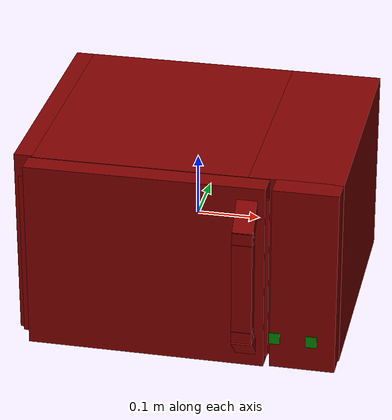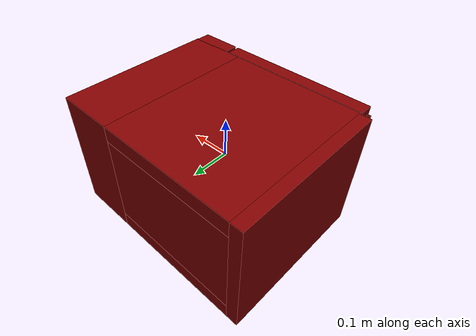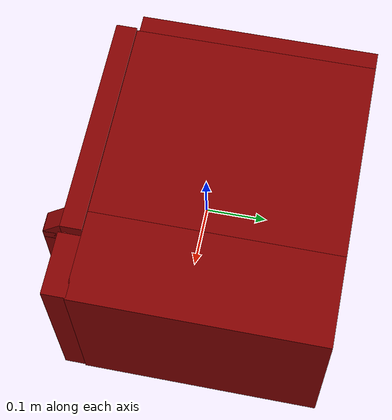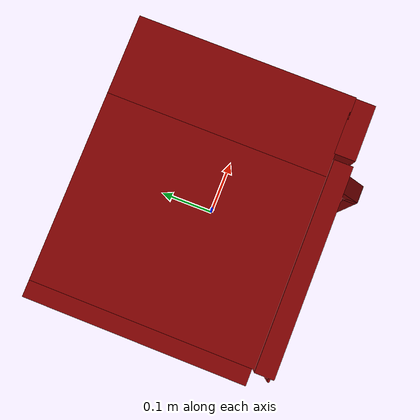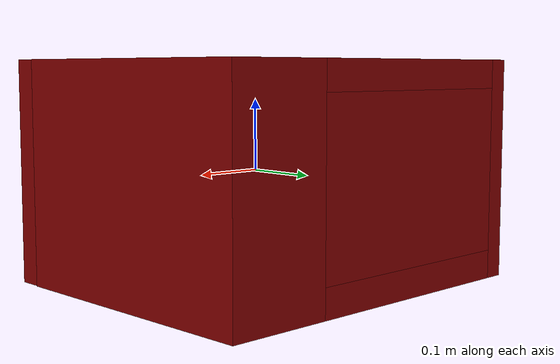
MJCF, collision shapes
<mujoco model="model">
  <compiler angle="radian"/>
  <asset>
    <mesh file="visuals/door.obj" name="door_vis"/>
    <mesh file="visuals/door_Clear.obj" name="door_Clear_vis"/>
    <mesh file="visuals/Body001.obj" name="Body001_vis"/>
    <mesh file="visuals/Disc001.obj" name="Disc001_vis"/>
    <texture file="visuals/T_BC001.png" name="Body001_material" type="2d"/>
    <material name="Body001_material" rgba="1 1 1 1.0" texture="Body001_material" shininess="0.4472135901451111" specular="0.3103448502657381"/>
    <texture file="visuals/T_BC001.png" name="door_material" type="2d"/>
    <material name="door_material" rgba="1 1 1 1.0" texture="door_material" shininess="0.4472135901451111" specular="0.3103448502657381"/>
    <texture file="visuals/T_BC001.png" name="door_Clear_material" type="2d"/>
    <material name="door_Clear_material" rgba="1 1 1 0.8999999761581421" texture="door_Clear_material" shininess="0.4472135901451111" specular="0.3103448502657381"/>
    <texture file="visuals/T_BC001.png" name="Disc001_material" type="2d"/>
    <material name="Disc001_material" rgba="1 1 1 1.0" texture="Disc001_material" shininess="0.4472135901451111" specular="0.3103448502657381"/>
  </asset>
  <default>
    <default class="visual">
      <geom conaffinity="0" contype="0" group="1" type="mesh"/>
    </default>
    <default class="collision">
      <geom group="0" rgba="0.5 0 0 0.5"/>
    </default>
    <default class="spawn">
      <geom group="0" rgba="1 1 1 0.5" contype="0" conaffinity="0"/>
      <site group="0" rgba="1 1 1 0.5"/>
    </default>
    <default class="region">
      <geom group="1" conaffinity="0" contype="0" rgba="0 1 0 0"/>
    </default>
  </default>
  <worldbody>
    <body>
      <body name="object">
        <geom class="collision" type="box" pos="-0.059587 0.002167 -0.099168" size="0.1553315818309784 0.15772782266139984 0.0014597863191738725" quat="1.0 0.0 0.0 0.0" name="tray" rgba="0 1 0 0.5"/>
        <geom class="collision" type="box" pos="0.219139 -0.199305 -0.101702" size="0.008800528943538666 0.0007300245342776179 0.009582175873219967" quat="1.0 0.0 0.0 0.0" name="start_button" rgba="0.0 0.5 0 0.5"/>
        <geom class="collision" type="box" pos="0.161659 -0.199305 -0.101702" size="0.008800528943538666 0.0007300245342776179 0.009582175873219967" quat="1.0 0.0 0.0 0.0" name="stop_button" rgba="0.0 0.5 0 0.5"/>
        <geom mesh="Body001_vis" type="mesh" solimp="0.998 0.998 0.001" solref="0.001 1" density="100" friction="0.95 0.3 0.1" class="visual" material="Body001_material"/>
        <geom class="collision" type="box" pos="-0.243836 0.039219 0.001052" size="0.0146717494353652 0.19732575118541718 0.15402378141880035" quat="1.0 0.0 0.0 0.0"/>
        <geom class="collision" type="box" pos="0.185177 0.037169 0.001052" size="0.07334654033184052 0.19937609136104584 0.15402378141880035" quat="1.0 0.0 0.0 0.0"/>
        <geom class="collision" type="box" pos="-0.058667 0.037169 0.135398" size="0.17049765586853027 0.19937609136104584 0.019678115844726562" quat="1.0 0.0 0.0 0.0"/>
        <geom class="collision" type="box" pos="-0.058667 0.037169 -0.132860" size="0.17049765586853027 0.19937609136104584 0.020111355930566788" quat="1.0 0.0 0.0 0.0"/>
        <geom class="collision" type="box" pos="-0.058667 0.200800 0.001485" size="0.17049765586853027 0.03574547916650772 0.11423442512750626" quat="1.0 0.0 0.0 0.0"/>
        <geom class="collision" type="box" pos="0.205394 -0.179171 0.001052" size="0.05126937851309776 0.01914084702730179 0.15402378141880035" quat="1.0 0.0 0.0 0.0"/>
        <body name="door">
          <joint axis="0.0 0.0 1.0" pos="-0.236572 -0.180826 -0.000014" limited="true" name="microjoint" range="-1.5707963267948966 0.0" type="hinge" damping="1" frictionloss="1" armature=".01" stiffness="0.05"/>
          <geom mesh="door_vis" type="mesh" solimp="0.998 0.998 0.001" solref="0.001 1" density="100" friction="0.95 0.3 0.1" class="visual" material="door_material"/>
          <geom class="collision" type="box" pos="-0.044631 -0.180963 0.000031" size="0.18895672261714935 0.017348919063806534 0.15504515171051025" quat="1.0 0.0 0.0 0.0"/>
          <geom class="collision" type="box" pos="0.116159 -0.225869 0.000833" size="0.015880037099123 0.0106765516102314 0.07551528513431549" quat="1.0 0.0 0.0 0.0" name="door_handle"/>
          <geom class="collision" type="box" pos="0.116159 -0.208585 0.109345" size="0.015880106016993523 0.010676620528101921 0.027604946866631508" quat="0.9238795042037964 -0.3826834559440613 -0.0 0.0"/>
          <geom class="collision" type="box" pos="0.116159 -0.209764 -0.108462" size="0.015880106016993523 0.010676618665456772 0.026911694556474686" quat="0.9238795042037964 0.3826834559440613 0.0 0.0"/>
          <geom class="collision" type="box" pos="0.116159 -0.225964 0.086739" size="0.015880106016993523 0.010676619596779346 0.00932499673217535" quat="1.0 0.0 0.0 0.0"/>
          <geom class="collision" type="box" pos="0.116159 -0.225964 -0.084749" size="0.015880106016993523 0.010676619596779346 0.009324989281594753" quat="1.0 0.0 0.0 0.0"/>
          <body name="door_Clear">
            <geom mesh="door_Clear_vis" type="mesh" solimp="0.998 0.998 0.001" solref="0.001 1" density="100" friction="0.95 0.3 0.1" class="visual" material="door_Clear_material"/>
            <geom class="collision" type="box" pos="-0.045728 -0.193035 0.000164" size="0.19624938070774078 0.0017499816603958607 0.13650856912136078" quat="1.0 0.0 0.0 0.0"/>
          </body>
        </body>
        <body name="Disc001">
          <joint axis="0.0 0.0 -1.0" pos="-0.059587 0.002167 -0.107425" limited="false" name="Disc001_joint" range="0 360" type="hinge" damping="1" frictionloss="1" armature=".01" stiffness="0.05"/>
          <geom mesh="Disc001_vis" type="mesh" solimp="0.998 0.998 0.001" solref="0.001 1" density="100" friction="0.95 0.3 0.1" class="visual" material="Disc001_material"/>
          <geom class="collision" type="cylinder" pos="-0.059587 0.002167 -0.104192" size="0.1553315818309784 0.0024200426414608955" quat="1.0 0.0 0.0 0.0"/>
        </body>
        <geom class="region" name="reg_main" type="box" pos="9.999999999982245e-06 0.01911650000000001 0.0" size="0.258518 0.2174285 0.155014"/>
        <geom class="region" name="reg_int" type="box" pos="-0.05764999999999999 0.005848000000000006 -0.0010410000000000003" size="0.168248 0.16298200000000002 0.112238"/>
      </body>
    </body>
  </worldbody>
  <actuator>
    <motor name="microjoint_actuator" joint="microjoint" gear="10"/>
    <motor name="Disc001_joint_actuator" joint="Disc001_joint" gear="10"/>
  </actuator>
</mujoco>
